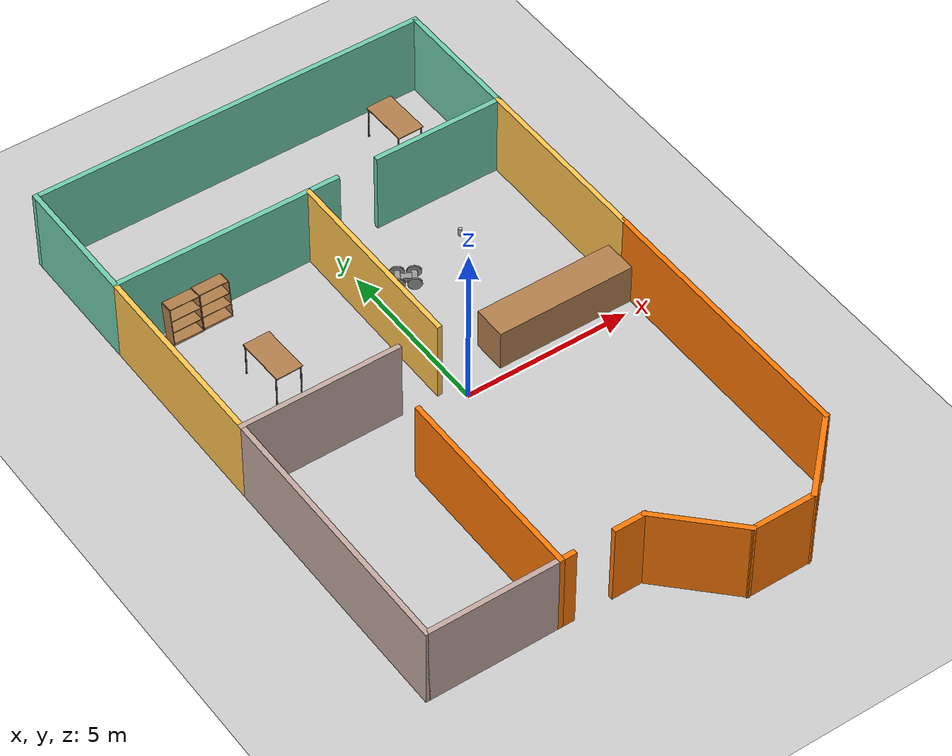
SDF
<sdf version="1.7">
 <world name="default">
  <model name="ground_plane">
   <static>1</static>
   <link name="link">
    <collision name="collision">
     <geometry><plane><normal>0 0 1</normal><size>100 100</size></plane></geometry>
     <surface>
      <contact><collide_bitmask>65535</collide_bitmask></contact>
      <friction><ode><mu>100</mu><mu2>50</mu2></ode></friction>
     </surface>
    </collision>
    <visual name="visual">
     <cast_shadows>0</cast_shadows>
     <geometry><plane><normal>0 0 1</normal><size>100 100</size></plane></geometry>
     <material>
      <script><uri>file://media/materials/scripts/gazebo.material</uri><name>Gazebo/Grey</name></script>
     </material>
    </visual>
   </link>
  </model>
  <model name="Model">
   <pose>-0.460298 0.47343 0 0 -0 0</pose>
   <link name="Wall_0">
    <collision name="Wall_0_Collision">
     <geometry><box><size>12 0.15 2.5</size></box></geometry>
     <pose>0 0 1.25 0 -0 0</pose>
    </collision>
    <visual name="Wall_0_Visual">
     <pose>0 0 1.25 0 -0 0</pose>
     <geometry><box><size>12 0.15 2.5</size></box></geometry>
     <material>
      <script><uri>file://media/materials/scripts/gazebo.material</uri><name>Gazebo/Grey</name></script>
      <ambient>0.435294 0.796078 0.67451 1</ambient>
     </material>
     <meta><layer>0</layer></meta>
    </visual>
    <pose>-0.015533 9.70977 0 0 -0 0</pose>
   </link>
   <link name="Wall_11">
    <collision name="Wall_11_Collision">
     <geometry><box><size>4 0.15 2.5</size></box></geometry>
     <pose>0 0 1.25 0 -0 0</pose>
    </collision>
    <visual name="Wall_11_Visual">
     <pose>0 0 1.25 0 -0 0</pose>
     <geometry><box><size>4 0.15 2.5</size></box></geometry>
     <material>
      <script><uri>file://media/materials/scripts/gazebo.material</uri><name>Gazebo/Grey</name></script>
      <ambient>0.435294 0.796078 0.67451 1</ambient>
     </material>
     <meta><layer>0</layer></meta>
    </visual>
    <pose>5.90947 7.78477 0 0 -0 -1.5708</pose>
   </link>
   <link name="Wall_12">
    <collision name="Wall_12_Collision">
     <geometry><box><size>4 0.15 2.5</size></box></geometry>
     <pose>0 0 1.25 0 -0 0</pose>
    </collision>
    <visual name="Wall_12_Visual">
     <pose>0 0 1.25 0 -0 0</pose>
     <geometry><box><size>4 0.15 2.5</size></box></geometry>
     <material>
      <script><uri>file://media/materials/scripts/gazebo.material</uri><name>Gazebo/Grey</name></script>
      <ambient>0.435294 0.796078 0.67451 1</ambient>
     </material>
     <meta><layer>0</layer></meta>
    </visual>
    <pose>3.98447 5.85977 0 0 -0 3.14159</pose>
   </link>
   <link name="Wall_14">
    <collision name="Wall_14_Collision">
     <geometry><box><size>5.65274 0.15 2.5</size></box></geometry>
     <pose>0 0 1.25 0 -0 0</pose>
    </collision>
    <visual name="Wall_14_Visual">
     <pose>0 0 1.25 0 -0 0</pose>
     <geometry><box><size>5.65274 0.15 2.5</size></box></geometry>
     <material>
      <script><uri>file://media/materials/scripts/gazebo.material</uri><name>Gazebo/Grey</name></script>
      <ambient>1 0.764706 0.305882 1</ambient>
     </material>
     <meta><layer>0</layer></meta>
    </visual>
    <pose>5.90938 3.10857 0 0 -0 -1.57083</pose>
   </link>
   <link name="Wall_17">
    <collision name="Wall_17_Collision">
     <geometry><box><size>8 0.15 2.5</size></box></geometry>
     <pose>0 0 1.25 0 -0 0</pose>
    </collision>
    <visual name="Wall_17_Visual">
     <pose>0 0 1.25 0 -0 0</pose>
     <geometry><box><size>8 0.15 2.5</size></box></geometry>
     <material>
      <script><uri>file://media/materials/scripts/gazebo.material</uri><name>Gazebo/Grey</name></script>
      <ambient>0.760784 0.662745 0.627451 1</ambient>
     </material>
     <meta><layer>0</layer></meta>
    </visual>
    <pose>-5.94053 -3.91523 0 0 -0 -1.5708</pose>
   </link>
   <link name="Wall_18">
    <collision name="Wall_18_Collision">
     <geometry><box><size>4 0.15 2.5</size></box></geometry>
     <pose>0 0 1.25 0 -0 0</pose>
    </collision>
    <visual name="Wall_18_Visual">
     <pose>0 0 1.25 0 -0 0</pose>
     <geometry><box><size>4 0.15 2.5</size></box></geometry>
     <material>
      <script><uri>file://media/materials/scripts/gazebo.material</uri><name>Gazebo/Grey</name></script>
      <ambient>0.760784 0.662745 0.627451 1</ambient>
     </material>
     <meta><layer>0</layer></meta>
    </visual>
    <pose>-4.01553 -7.84023 0 0 -0 0</pose>
   </link>
   <link name="Wall_19">
    <collision name="Wall_19_Collision">
     <geometry><box><size>6 0.15 2.5</size></box></geometry>
     <pose>0 0 1.25 0 -0 0</pose>
    </collision>
    <visual name="Wall_19_Visual">
     <pose>0 0 1.25 0 -0 0</pose>
     <geometry><box><size>6 0.15 2.5</size></box></geometry>
     <material>
      <script><uri>file://media/materials/scripts/gazebo.material</uri><name>Gazebo/Grey</name></script>
      <ambient>0.996078 0.47451 0.0196078 1</ambient>
     </material>
     <meta><layer>0</layer></meta>
    </visual>
    <pose>-2.09053 -4.91523 0 0 -0 1.5708</pose>
   </link>
   <link name="Wall_2">
    <collision name="Wall_2_Collision">
     <geometry><box><size>4 0.15 2.5</size></box></geometry>
     <pose>0 0 1.25 0 -0 0</pose>
    </collision>
    <visual name="Wall_2_Visual">
     <pose>0 0 1.25 0 -0 0</pose>
     <geometry><box><size>4 0.15 2.5</size></box></geometry>
     <material>
      <script><uri>file://media/materials/scripts/gazebo.material</uri><name>Gazebo/Grey</name></script>
      <ambient>0.435294 0.796078 0.67451 1</ambient>
     </material>
     <meta><layer>0</layer></meta>
    </visual>
    <pose>-5.94053 7.78477 0 0 -0 -1.5708</pose>
   </link>
   <link name="Wall_22">
    <collision name="Wall_22_Collision">
     <geometry><box><size>8.34781 0.15 2.5</size></box></geometry>
     <pose>0 0 1.25 0 -0 0</pose>
    </collision>
    <visual name="Wall_22_Visual">
     <pose>0 0 1.25 0 -0 0</pose>
     <geometry><box><size>8.34781 0.15 2.5</size></box></geometry>
     <material>
      <script><uri>file://media/materials/scripts/gazebo.material</uri><name>Gazebo/Grey</name></script>
      <ambient>0.996078 0.47451 0.0196078 1</ambient>
     </material>
     <meta><layer>0</layer></meta>
    </visual>
    <pose>5.90938 -3.74143 0 0 -0 -1.57078</pose>
   </link>
   <link name="Wall_23">
    <collision name="Wall_23_Collision">
     <geometry><box><size>2.75 0.15 2.5</size></box></geometry>
     <pose>0 0 1.25 0 -0 0</pose>
    </collision>
    <visual name="Wall_23_Visual">
     <pose>0 0 1.25 0 -0 0</pose>
     <geometry><box><size>2.75 0.15 2.5</size></box></geometry>
     <material>
      <script><uri>file://media/materials/scripts/gazebo.material</uri><name>Gazebo/Grey</name></script>
      <ambient>0.996078 0.47451 0.0196078 1</ambient>
     </material>
     <meta><layer>0</layer></meta>
    </visual>
    <pose>4.99023 -8.75947 0 0 -0 -2.35619</pose>
   </link>
   <link name="Wall_24">
    <collision name="Wall_24_Collision">
     <geometry><box><size>2 0.15 2.5</size></box></geometry>
     <pose>0 0 1.25 0 -0 0</pose>
    </collision>
    <visual name="Wall_24_Visual">
     <pose>0 0 1.25 0 -0 0</pose>
     <geometry><box><size>2 0.15 2.5</size></box></geometry>
     <material>
      <script><uri>file://media/materials/scripts/gazebo.material</uri><name>Gazebo/Grey</name></script>
      <ambient>0.996078 0.47451 0.0196078 1</ambient>
     </material>
     <meta><layer>0</layer></meta>
    </visual>
    <pose>3.14599 -9.67871 0 0 -0 3.14159</pose>
   </link>
   <link name="Wall_25">
    <collision name="Wall_25_Collision">
     <geometry><box><size>2.75 0.15 2.5</size></box></geometry>
     <pose>0 0 1.25 0 -0 0</pose>
    </collision>
    <visual name="Wall_25_Visual">
     <pose>0 0 1.25 0 -0 0</pose>
     <geometry><box><size>2.75 0.15 2.5</size></box></geometry>
     <material>
      <script><uri>file://media/materials/scripts/gazebo.material</uri><name>Gazebo/Grey</name></script>
      <ambient>0.996078 0.47451 0.0196078 1</ambient>
     </material>
     <meta><layer>0</layer></meta>
    </visual>
    <pose>1.30175 -8.75947 0 0 -0 2.35619</pose>
   </link>
   <link name="Wall_26">
    <collision name="Wall_26_Collision">
     <geometry><box><size>1 0.15 2.5</size></box></geometry>
     <pose>0 0 1.25 0 -0 0</pose>
    </collision>
    <visual name="Wall_26_Visual">
     <pose>0 0 1.25 0 -0 0</pose>
     <geometry><box><size>1 0.15 2.5</size></box></geometry>
     <material>
      <script><uri>file://media/materials/scripts/gazebo.material</uri><name>Gazebo/Grey</name></script>
      <ambient>0.996078 0.47451 0.0196078 1</ambient>
     </material>
     <meta><layer>0</layer></meta>
    </visual>
    <pose>-0.042488 -7.84023 0 0 -0 3.14159</pose>
   </link>
   <link name="Wall_28">
    <collision name="Wall_28_Collision">
     <geometry><box><size>0.5 0.15 2.5</size></box></geometry>
     <pose>0 0 1.25 0 -0 0</pose>
    </collision>
    <visual name="Wall_28_Visual">
     <pose>0 0 1.25 0 -0 0</pose>
     <geometry><box><size>0.5 0.15 2.5</size></box></geometry>
     <material>
      <script><uri>file://media/materials/scripts/gazebo.material</uri><name>Gazebo/Grey</name></script>
      <ambient>0.996078 0.47451 0.0196078 1</ambient>
     </material>
     <meta><layer>0</layer></meta>
    </visual>
    <pose>-1.91553 -7.84023 0 0 -0 0</pose>
   </link>
   <link name="Wall_3">
    <collision name="Wall_3_Collision">
     <geometry><box><size>6 0.15 2.5</size></box></geometry>
     <pose>0 0 1.25 0 -0 0</pose>
    </collision>
    <visual name="Wall_3_Visual">
     <pose>0 0 1.25 0 -0 0</pose>
     <geometry><box><size>6 0.15 2.5</size></box></geometry>
     <material>
      <script><uri>file://media/materials/scripts/gazebo.material</uri><name>Gazebo/Grey</name></script>
      <ambient>0.435294 0.796078 0.67451 1</ambient>
     </material>
     <meta><layer>0</layer></meta>
    </visual>
    <pose>-3.01553 5.85977 0 0 -0 0</pose>
   </link>
   <link name="Wall_31">
    <collision name="Wall_31_Collision">
     <geometry><box><size>4.25 1 1.25</size></box></geometry>
     <pose>0 0 0.625 0 -0 0</pose>
    </collision>
    <visual name="Wall_31_Visual">
     <pose>0 0 0.625 0 -0 0</pose>
     <geometry><box><size>4.25 1 1.25</size></box></geometry>
     <material>
      <script><uri>file://media/materials/scripts/gazebo.material</uri><name>Gazebo/Wood</name></script>
      <ambient>1 1 1 1</ambient>
     </material>
     <meta><layer>0</layer></meta>
    </visual>
    <pose>3.8083 0.326538 0 0 -0 0</pose>
   </link>
   <link name="Wall_4">
    <collision name="Wall_4_Collision">
     <geometry><box><size>5.9849 0.15 2.5</size></box></geometry>
     <pose>0 0 1.25 0 -0 0</pose>
    </collision>
    <visual name="Wall_4_Visual">
     <pose>0 0 1.25 0 -0 0</pose>
     <geometry><box><size>5.9849 0.15 2.5</size></box></geometry>
     <material>
      <script><uri>file://media/materials/scripts/gazebo.material</uri><name>Gazebo/Grey</name></script>
      <ambient>1 0.764706 0.305882 1</ambient>
     </material>
     <meta><layer>0</layer></meta>
    </visual>
    <pose>-0.098094 2.94233 0 0 -0 -1.57339</pose>
   </link>
   <link name="Wall_6">
    <collision name="Wall_6_Collision">
     <geometry><box><size>6 0.15 2.5</size></box></geometry>
     <pose>0 0 1.25 0 -0 0</pose>
    </collision>
    <visual name="Wall_6_Visual">
     <pose>0 0 1.25 0 -0 0</pose>
     <geometry><box><size>6 0.15 2.5</size></box></geometry>
     <material>
      <script><uri>file://media/materials/scripts/gazebo.material</uri><name>Gazebo/Grey</name></script>
      <ambient>1 0.764706 0.305882 1</ambient>
     </material>
     <meta><layer>0</layer></meta>
    </visual>
    <pose>-5.94053 2.93477 0 0 -0 -1.5708</pose>
   </link>
   <link name="Wall_7">
    <collision name="Wall_7_Collision">
     <geometry><box><size>4.75 0.15 2.5</size></box></geometry>
     <pose>0 0 1.25 0 -0 0</pose>
    </collision>
    <visual name="Wall_7_Visual">
     <pose>0 0 1.25 0 -0 0</pose>
     <geometry><box><size>4.75 0.15 2.5</size></box></geometry>
     <material>
      <script><uri>file://media/materials/scripts/gazebo.material</uri><name>Gazebo/Grey</name></script>
      <ambient>0.760784 0.662745 0.627451 1</ambient>
     </material>
     <meta><layer>0</layer></meta>
    </visual>
    <pose>-3.64053 0.009772 0 0 -0 0</pose>
   </link>
   <link name="Wall_9">
    <collision name="Wall_9_Collision">
     <geometry><box><size>1 0.15 2.5</size></box></geometry>
     <pose>0 0 1.25 0 -0 0</pose>
    </collision>
    <visual name="Wall_9_Visual">
     <pose>0 0 1.25 0 -0 0</pose>
     <geometry><box><size>1 0.15 2.5</size></box></geometry>
     <material>
      <script><uri>file://media/materials/scripts/gazebo.material</uri><name>Gazebo/Grey</name></script>
      <ambient>0.435294 0.796078 0.67451 1</ambient>
     </material>
     <meta><layer>0</layer></meta>
    </visual>
    <pose>0.334467 5.85977 0 0 -0 0</pose>
   </link>
   <static>1</static>
  </model>
  <model name="bookshelf">
   <static>1</static>
   <link name="link">
    <inertial><mass>1</mass></inertial>
    <collision name="back">
     <pose>0 0.005 0.6 0 -0 0</pose>
     <geometry><box><size>0.9 0.01 1.2</size></box></geometry>
    </collision>
    <visual name="visual1">
     <pose>0 0.005 0.6 0 -0 0</pose>
     <geometry><box><size>0.9 0.01 1.2</size></box></geometry>
     <material>
      <script><uri>file://media/materials/scripts/gazebo.material</uri><name>Gazebo/Wood</name></script>
     </material>
    </visual>
    <collision name="left_side">
     <pose>0.45 -0.195 0.6 0 -0 0</pose>
     <geometry><box><size>0.02 0.4 1.2</size></box></geometry>
    </collision>
    <visual name="visual2">
     <pose>0.45 -0.195 0.6 0 -0 0</pose>
     <geometry><box><size>0.02 0.4 1.2</size></box></geometry>
     <material>
      <script><uri>file://media/materials/scripts/gazebo.material</uri><name>Gazebo/Wood</name></script>
     </material>
    </visual>
    <collision name="right_side">
     <pose>-0.45 -0.195 0.6 0 -0 0</pose>
     <geometry><box><size>0.02 0.4 1.2</size></box></geometry>
    </collision>
    <visual name="visual3">
     <pose>-0.45 -0.195 0.6 0 -0 0</pose>
     <geometry><box><size>0.02 0.4 1.2</size></box></geometry>
     <material>
      <script><uri>file://media/materials/scripts/gazebo.material</uri><name>Gazebo/Wood</name></script>
     </material>
    </visual>
    <collision name="bottom">
     <pose>0 -0.195 0.03 0 -0 0</pose>
     <geometry><box><size>0.88 0.4 0.06</size></box></geometry>
    </collision>
    <visual name="visual4">
     <pose>0 -0.195 0.03 0 -0 0</pose>
     <geometry><box><size>0.88 0.4 0.06</size></box></geometry>
     <material>
      <script><uri>file://media/materials/scripts/gazebo.material</uri><name>Gazebo/Wood</name></script>
     </material>
    </visual>
    <collision name="top">
     <pose>0 -0.195 1.19 0 -0 0</pose>
     <geometry><box><size>0.88 0.4 0.02</size></box></geometry>
    </collision>
    <visual name="visual5">
     <pose>0 -0.195 1.19 0 -0 0</pose>
     <geometry><box><size>0.88 0.4 0.02</size></box></geometry>
     <material>
      <script><uri>file://media/materials/scripts/gazebo.material</uri><name>Gazebo/Wood</name></script>
     </material>
    </visual>
    <collision name="low_shelf">
     <pose>0 -0.195 0.43 0 -0 0</pose>
     <geometry><box><size>0.88 0.4 0.02</size></box></geometry>
    </collision>
    <visual name="visual6">
     <pose>0 -0.195 0.43 0 -0 0</pose>
     <geometry><box><size>0.88 0.4 0.02</size></box></geometry>
     <material>
      <script><uri>file://media/materials/scripts/gazebo.material</uri><name>Gazebo/Wood</name></script>
     </material>
    </visual>
    <collision name="high_shelf">
     <pose>0 -0.195 0.8 0 -0 0</pose>
     <geometry><box><size>0.88 0.4 0.02</size></box></geometry>
    </collision>
    <visual name="visual7">
     <pose>0 -0.195 0.8 0 -0 0</pose>
     <geometry><box><size>0.88 0.4 0.02</size></box></geometry>
     <material>
      <script><uri>file://media/materials/scripts/gazebo.material</uri><name>Gazebo/Wood</name></script>
     </material>
    </visual>
   </link>
   <pose>-4.71823 6.08584 0 -0.106297 0 0</pose>
  </model>
  <model name="bookshelf_clone">
   <static>1</static>
   <link name="link">
    <inertial><mass>1</mass></inertial>
    <collision name="back">
     <pose>0 0.005 0.6 0 -0 0</pose>
     <geometry><box><size>0.9 0.01 1.2</size></box></geometry>
    </collision>
    <visual name="visual1">
     <pose>0 0.005 0.6 0 -0 0</pose>
     <geometry><box><size>0.9 0.01 1.2</size></box></geometry>
     <material>
      <script><uri>file://media/materials/scripts/gazebo.material</uri><name>Gazebo/Wood</name></script>
     </material>
    </visual>
    <collision name="left_side">
     <pose>0.45 -0.195 0.6 0 -0 0</pose>
     <geometry><box><size>0.02 0.4 1.2</size></box></geometry>
    </collision>
    <visual name="visual2">
     <pose>0.45 -0.195 0.6 0 -0 0</pose>
     <geometry><box><size>0.02 0.4 1.2</size></box></geometry>
     <material>
      <script><uri>file://media/materials/scripts/gazebo.material</uri><name>Gazebo/Wood</name></script>
     </material>
    </visual>
    <collision name="right_side">
     <pose>-0.45 -0.195 0.6 0 -0 0</pose>
     <geometry><box><size>0.02 0.4 1.2</size></box></geometry>
    </collision>
    <visual name="visual3">
     <pose>-0.45 -0.195 0.6 0 -0 0</pose>
     <geometry><box><size>0.02 0.4 1.2</size></box></geometry>
     <material>
      <script><uri>file://media/materials/scripts/gazebo.material</uri><name>Gazebo/Wood</name></script>
     </material>
    </visual>
    <collision name="bottom">
     <pose>0 -0.195 0.03 0 -0 0</pose>
     <geometry><box><size>0.88 0.4 0.06</size></box></geometry>
    </collision>
    <visual name="visual4">
     <pose>0 -0.195 0.03 0 -0 0</pose>
     <geometry><box><size>0.88 0.4 0.06</size></box></geometry>
     <material>
      <script><uri>file://media/materials/scripts/gazebo.material</uri><name>Gazebo/Wood</name></script>
     </material>
    </visual>
    <collision name="top">
     <pose>0 -0.195 1.19 0 -0 0</pose>
     <geometry><box><size>0.88 0.4 0.02</size></box></geometry>
    </collision>
    <visual name="visual5">
     <pose>0 -0.195 1.19 0 -0 0</pose>
     <geometry><box><size>0.88 0.4 0.02</size></box></geometry>
     <material>
      <script><uri>file://media/materials/scripts/gazebo.material</uri><name>Gazebo/Wood</name></script>
     </material>
    </visual>
    <collision name="low_shelf">
     <pose>0 -0.195 0.43 0 -0 0</pose>
     <geometry><box><size>0.88 0.4 0.02</size></box></geometry>
    </collision>
    <visual name="visual6">
     <pose>0 -0.195 0.43 0 -0 0</pose>
     <geometry><box><size>0.88 0.4 0.02</size></box></geometry>
     <material>
      <script><uri>file://media/materials/scripts/gazebo.material</uri><name>Gazebo/Wood</name></script>
     </material>
    </visual>
    <collision name="high_shelf">
     <pose>0 -0.195 0.8 0 -0 0</pose>
     <geometry><box><size>0.88 0.4 0.02</size></box></geometry>
    </collision>
    <visual name="visual7">
     <pose>0 -0.195 0.8 0 -0 0</pose>
     <geometry><box><size>0.88 0.4 0.02</size></box></geometry>
     <material>
      <script><uri>file://media/materials/scripts/gazebo.material</uri><name>Gazebo/Wood</name></script>
     </material>
    </visual>
   </link>
   <pose>-3.82838 6.10928 0 -0.106297 0 0</pose>
  </model>
  <model name="beer">
   <link name="link">
    <pose>0 0 0.115 0 -0 0</pose>
    <inertial>
     <mass>0.39</mass>
     <inertia><ixx>0.00058</ixx><ixy>0</ixy><ixz>0</ixz><iyy>0.00058</iyy><iyz>0</iyz><izz>0.00019</izz></inertia>
    </inertial>
    <collision name="collision">
     <geometry><cylinder><radius>0.055</radius><length>0.23</length></cylinder></geometry>
    </collision>
    <visual name="visual">
     <geometry><cylinder><radius>0.055</radius><length>0.23</length></cylinder></geometry>
     <material>
      <script>
       <uri>model://beer/materials/scripts</uri>
       <uri>model://beer/materials/textures</uri>
       <name>Beer/Diffuse</name>
      </script>
     </material>
    </visual>
   </link>
   <pose>2.71472 4.1849 0.77499 -1e-06 2.6e-05 0.003425</pose>
  </model>
  <model name="JM_robot_0">
   <link name="link_0_clone_0_clone">
    <inertial>
     <mass>1</mass>
     <inertia>
      <ixx>0.166667</ixx>
      <ixy>0</ixy>
      <ixz>0</ixz>
      <iyy>0.166667</iyy>
      <iyz>0</iyz>
      <izz>0.166667</izz>
     </inertia>
    </inertial>
    <visual name="visual">
     <geometry><box><size>0.2 0.3 0.15</size></box></geometry>
     <material>
      <lighting>1</lighting>
      <script><uri>file://media/materials/scripts/gazebo.material</uri><name>Gazebo/Grey</name></script>
      <shader type="pixel"><normal_map>__default__</normal_map></shader>
      <ambient>0.3 0.3 0.3 1</ambient>
      <diffuse>0.7 0.7 0.7 1</diffuse>
      <specular>0.01 0.01 0.01 1</specular>
      <emissive>0 0 0 1</emissive>
     </material>
    </visual>
    <collision name="collision">
     <geometry><box><size>0.2 0.3 0.15</size></box></geometry>
     <surface>
      <friction>
       <ode><mu>1</mu><mu2>1</mu2><fdir1>0 0 0</fdir1><slip1>0</slip1><slip2>0</slip2></ode>
       <torsional>
        <coefficient>1</coefficient>
        <patch_radius>0</patch_radius>
        <surface_radius>0</surface_radius>
        <use_patch_radius>1</use_patch_radius>
        <ode><slip>0</slip></ode>
       </torsional>
      </friction>
      <bounce><restitution_coefficient>0</restitution_coefficient><threshold>1e+06</threshold></bounce>
      <contact>
       <collide_without_contact>0</collide_without_contact>
       <collide_without_contact_bitmask>1</collide_without_contact_bitmask>
       <collide_bitmask>1</collide_bitmask>
       <ode>
        <soft_cfm>0</soft_cfm>
        <soft_erp>0.2</soft_erp>
        <kp>1e+13</kp>
        <kd>1</kd>
        <max_vel>0.01</max_vel>
        <min_depth>0</min_depth>
       </ode>
       <bullet>
        <split_impulse>1</split_impulse>
        <split_impulse_penetration_threshold>-0.01</split_impulse_penetration_threshold>
        <soft_cfm>0</soft_cfm>
        <soft_erp>0.2</soft_erp>
        <kp>1e+13</kp>
        <kd>1</kd>
       </bullet>
      </contact>
     </surface>
    </collision>
   </link>
   <link name="link_1_clone_clone_0_clone">
    <inertial>
     <mass>1</mass>
     <inertia>
      <ixx>0.166667</ixx>
      <ixy>0</ixy>
      <ixz>0</ixz>
      <iyy>0.166667</iyy>
      <iyz>0</iyz>
      <izz>0.166667</izz>
     </inertia>
     <pose>0 0 0.2 0 -0 0</pose>
    </inertial>
    <pose>0 0.225 0 0 -0 0</pose>
    <visual name="visual">
     <geometry><box><size>0.4 0.15 0.15</size></box></geometry>
     <material>
      <lighting>1</lighting>
      <script><uri>file://media/materials/scripts/gazebo.material</uri><name>Gazebo/Grey</name></script>
      <shader type="pixel"><normal_map>__default__</normal_map></shader>
      <ambient>0.3 0.3 0.3 1</ambient>
      <diffuse>0.7 0.7 0.7 1</diffuse>
      <specular>0.01 0.01 0.01 1</specular>
      <emissive>0 0 0 1</emissive>
     </material>
    </visual>
    <collision name="collision">
     <geometry><box><size>0.4 0.15 0.15</size></box></geometry>
     <surface>
      <friction>
       <ode><mu>1</mu><mu2>1</mu2><fdir1>0 0 0</fdir1><slip1>0</slip1><slip2>0</slip2></ode>
       <torsional>
        <coefficient>1</coefficient>
        <patch_radius>0</patch_radius>
        <surface_radius>0</surface_radius>
        <use_patch_radius>1</use_patch_radius>
        <ode><slip>0</slip></ode>
       </torsional>
      </friction>
      <bounce><restitution_coefficient>0</restitution_coefficient><threshold>1e+06</threshold></bounce>
      <contact>
       <collide_without_contact>0</collide_without_contact>
       <collide_without_contact_bitmask>1</collide_without_contact_bitmask>
       <collide_bitmask>1</collide_bitmask>
       <ode>
        <soft_cfm>0</soft_cfm>
        <soft_erp>0.2</soft_erp>
        <kp>1e+13</kp>
        <kd>1</kd>
        <max_vel>0.01</max_vel>
        <min_depth>0</min_depth>
       </ode>
       <bullet>
        <split_impulse>1</split_impulse>
        <split_impulse_penetration_threshold>-0.01</split_impulse_penetration_threshold>
        <soft_cfm>0</soft_cfm>
        <soft_erp>0.2</soft_erp>
        <kp>1e+13</kp>
        <kd>1</kd>
       </bullet>
      </contact>
     </surface>
    </collision>
   </link>
   <link name="link_1_clone_clone_0_clone_clone">
    <inertial>
     <mass>1</mass>
     <inertia>
      <ixx>0.166667</ixx>
      <ixy>0</ixy>
      <ixz>0</ixz>
      <iyy>0.166667</iyy>
      <iyz>0</iyz>
      <izz>0.166667</izz>
     </inertia>
     <pose>0 0 0.2 0 -0 0</pose>
    </inertial>
    <pose>0 -0.225 0 0 -0 0</pose>
    <visual name="visual">
     <geometry><box><size>0.4 0.15 0.15</size></box></geometry>
     <material>
      <lighting>1</lighting>
      <script><uri>file://media/materials/scripts/gazebo.material</uri><name>Gazebo/Grey</name></script>
      <shader type="pixel"><normal_map>__default__</normal_map></shader>
      <ambient>0.3 0.3 0.3 1</ambient>
      <diffuse>0.7 0.7 0.7 1</diffuse>
      <specular>0.01 0.01 0.01 1</specular>
      <emissive>0 0 0 1</emissive>
     </material>
    </visual>
    <collision name="collision">
     <geometry><box><size>0.4 0.15 0.15</size></box></geometry>
     <surface>
      <friction>
       <ode><mu>1</mu><mu2>1</mu2><fdir1>0 0 0</fdir1><slip1>0</slip1><slip2>0</slip2></ode>
       <torsional>
        <coefficient>1</coefficient>
        <patch_radius>0</patch_radius>
        <surface_radius>0</surface_radius>
        <use_patch_radius>1</use_patch_radius>
        <ode><slip>0</slip></ode>
       </torsional>
      </friction>
      <bounce><restitution_coefficient>0</restitution_coefficient><threshold>1e+06</threshold></bounce>
      <contact>
       <collide_without_contact>0</collide_without_contact>
       <collide_without_contact_bitmask>1</collide_without_contact_bitmask>
       <collide_bitmask>1</collide_bitmask>
       <ode>
        <soft_cfm>0</soft_cfm>
        <soft_erp>0.2</soft_erp>
        <kp>1e+13</kp>
        <kd>1</kd>
        <max_vel>0.01</max_vel>
        <min_depth>0</min_depth>
       </ode>
       <bullet>
        <split_impulse>1</split_impulse>
        <split_impulse_penetration_threshold>-0.01</split_impulse_penetration_threshold>
        <soft_cfm>0</soft_cfm>
        <soft_erp>0.2</soft_erp>
        <kp>1e+13</kp>
        <kd>1</kd>
       </bullet>
      </contact>
     </surface>
    </collision>
   </link>
   <link name="link_2_clone">
    <inertial>
     <mass>1</mass>
     <inertia><ixx>0.145833</ixx><ixy>0</ixy><ixz>0</ixz><iyy>0.145833</iyy><iyz>0</iyz><izz>0.125</izz></inertia>
    </inertial>
    <pose>-0.225039 -0.225 0 1.5707 0 1.5707</pose>
    <visual name="visual">
     <geometry><cylinder><radius>0.2</radius><length>0.05</length></cylinder></geometry>
     <material>
      <lighting>1</lighting>
      <script><uri>file://media/materials/scripts/gazebo.material</uri><name>Gazebo/Grey</name></script>
      <shader type="pixel"><normal_map>__default__</normal_map></shader>
      <ambient>0.3 0.3 0.3 1</ambient>
      <diffuse>0.7 0.7 0.7 1</diffuse>
      <specular>0.01 0.01 0.01 1</specular>
      <emissive>0 0 0 1</emissive>
     </material>
    </visual>
    <collision name="collision">
     <geometry><cylinder><radius>0.2</radius><length>0.05</length></cylinder></geometry>
     <surface>
      <friction>
       <ode><mu>1</mu><mu2>1</mu2><fdir1>0 0 0</fdir1><slip1>0</slip1><slip2>0</slip2></ode>
       <torsional>
        <coefficient>1</coefficient>
        <patch_radius>0</patch_radius>
        <surface_radius>0</surface_radius>
        <use_patch_radius>1</use_patch_radius>
        <ode><slip>0</slip></ode>
       </torsional>
      </friction>
      <bounce><restitution_coefficient>0</restitution_coefficient><threshold>1e+06</threshold></bounce>
      <contact>
       <collide_without_contact>0</collide_without_contact>
       <collide_without_contact_bitmask>1</collide_without_contact_bitmask>
       <collide_bitmask>1</collide_bitmask>
       <ode>
        <soft_cfm>0</soft_cfm>
        <soft_erp>0.2</soft_erp>
        <kp>1e+13</kp>
        <kd>1</kd>
        <max_vel>0.01</max_vel>
        <min_depth>0</min_depth>
       </ode>
       <bullet>
        <split_impulse>1</split_impulse>
        <split_impulse_penetration_threshold>-0.01</split_impulse_penetration_threshold>
        <soft_cfm>0</soft_cfm>
        <soft_erp>0.2</soft_erp>
        <kp>1e+13</kp>
        <kd>1</kd>
       </bullet>
      </contact>
     </surface>
    </collision>
   </link>
   <link name="link_2_clone_clone">
    <inertial>
     <mass>1</mass>
     <inertia><ixx>0.145833</ixx><ixy>0</ixy><ixz>0</ixz><iyy>0.145833</iyy><iyz>0</iyz><izz>0.125</izz></inertia>
    </inertial>
    <pose>0.225039 -0.225 0 1.5707 0 1.5707</pose>
    <visual name="visual">
     <geometry><cylinder><radius>0.2</radius><length>0.05</length></cylinder></geometry>
     <material>
      <lighting>1</lighting>
      <script><uri>file://media/materials/scripts/gazebo.material</uri><name>Gazebo/Grey</name></script>
      <shader type="pixel"><normal_map>__default__</normal_map></shader>
      <ambient>0.3 0.3 0.3 1</ambient>
      <diffuse>0.7 0.7 0.7 1</diffuse>
      <specular>0.01 0.01 0.01 1</specular>
      <emissive>0 0 0 1</emissive>
     </material>
    </visual>
    <collision name="collision">
     <geometry><cylinder><radius>0.2</radius><length>0.05</length></cylinder></geometry>
     <surface>
      <friction>
       <ode><mu>1</mu><mu2>1</mu2><fdir1>0 0 0</fdir1><slip1>0</slip1><slip2>0</slip2></ode>
       <torsional>
        <coefficient>1</coefficient>
        <patch_radius>0</patch_radius>
        <surface_radius>0</surface_radius>
        <use_patch_radius>1</use_patch_radius>
        <ode><slip>0</slip></ode>
       </torsional>
      </friction>
      <bounce><restitution_coefficient>0</restitution_coefficient><threshold>1e+06</threshold></bounce>
      <contact>
       <collide_without_contact>0</collide_without_contact>
       <collide_without_contact_bitmask>1</collide_without_contact_bitmask>
       <collide_bitmask>1</collide_bitmask>
       <ode>
        <soft_cfm>0</soft_cfm>
        <soft_erp>0.2</soft_erp>
        <kp>1e+13</kp>
        <kd>1</kd>
        <max_vel>0.01</max_vel>
        <min_depth>0</min_depth>
       </ode>
       <bullet>
        <split_impulse>1</split_impulse>
        <split_impulse_penetration_threshold>-0.01</split_impulse_penetration_threshold>
        <soft_cfm>0</soft_cfm>
        <soft_erp>0.2</soft_erp>
        <kp>1e+13</kp>
        <kd>1</kd>
       </bullet>
      </contact>
     </surface>
    </collision>
   </link>
   <link name="link_2_clone_clone_2">
    <inertial>
     <mass>1</mass>
     <inertia><ixx>0.145833</ixx><ixy>0</ixy><ixz>0</ixz><iyy>0.145833</iyy><iyz>0</iyz><izz>0.125</izz></inertia>
    </inertial>
    <pose>-0.225039 0.225 0 1.5707 0 1.5707</pose>
    <visual name="visual">
     <geometry><cylinder><radius>0.2</radius><length>0.05</length></cylinder></geometry>
     <material>
      <lighting>1</lighting>
      <script><uri>file://media/materials/scripts/gazebo.material</uri><name>Gazebo/Grey</name></script>
      <shader type="pixel"><normal_map>__default__</normal_map></shader>
      <ambient>0.3 0.3 0.3 1</ambient>
      <diffuse>0.7 0.7 0.7 1</diffuse>
      <specular>0.01 0.01 0.01 1</specular>
      <emissive>0 0 0 1</emissive>
     </material>
    </visual>
    <collision name="collision">
     <geometry><cylinder><radius>0.2</radius><length>0.05</length></cylinder></geometry>
     <surface>
      <friction>
       <ode><mu>1</mu><mu2>1</mu2><fdir1>0 0 0</fdir1><slip1>0</slip1><slip2>0</slip2></ode>
       <torsional>
        <coefficient>1</coefficient>
        <patch_radius>0</patch_radius>
        <surface_radius>0</surface_radius>
        <use_patch_radius>1</use_patch_radius>
        <ode><slip>0</slip></ode>
       </torsional>
      </friction>
      <bounce><restitution_coefficient>0</restitution_coefficient><threshold>1e+06</threshold></bounce>
      <contact>
       <collide_without_contact>0</collide_without_contact>
       <collide_without_contact_bitmask>1</collide_without_contact_bitmask>
       <collide_bitmask>1</collide_bitmask>
       <ode>
        <soft_cfm>0</soft_cfm>
        <soft_erp>0.2</soft_erp>
        <kp>1e+13</kp>
        <kd>1</kd>
        <max_vel>0.01</max_vel>
        <min_depth>0</min_depth>
       </ode>
       <bullet>
        <split_impulse>1</split_impulse>
        <split_impulse_penetration_threshold>-0.01</split_impulse_penetration_threshold>
        <soft_cfm>0</soft_cfm>
        <soft_erp>0.2</soft_erp>
        <kp>1e+13</kp>
        <kd>1</kd>
       </bullet>
      </contact>
     </surface>
    </collision>
   </link>
   <link name="link_2_clone_clone_clone">
    <inertial>
     <mass>1</mass>
     <inertia><ixx>0.145833</ixx><ixy>0</ixy><ixz>0</ixz><iyy>0.145833</iyy><iyz>0</iyz><izz>0.125</izz></inertia>
    </inertial>
    <pose>0.225039 0.225 0 1.5707 0 1.5707</pose>
    <visual name="visual">
     <geometry><cylinder><radius>0.2</radius><length>0.05</length></cylinder></geometry>
     <material>
      <lighting>1</lighting>
      <script><uri>file://media/materials/scripts/gazebo.material</uri><name>Gazebo/Grey</name></script>
      <shader type="pixel"><normal_map>__default__</normal_map></shader>
      <ambient>0.3 0.3 0.3 1</ambient>
      <diffuse>0.7 0.7 0.7 1</diffuse>
      <specular>0.01 0.01 0.01 1</specular>
      <emissive>0 0 0 1</emissive>
     </material>
    </visual>
    <collision name="collision">
     <geometry><cylinder><radius>0.2</radius><length>0.05</length></cylinder></geometry>
     <surface>
      <friction>
       <ode><mu>1</mu><mu2>1</mu2><fdir1>0 0 0</fdir1><slip1>0</slip1><slip2>0</slip2></ode>
       <torsional>
        <coefficient>1</coefficient>
        <patch_radius>0</patch_radius>
        <surface_radius>0</surface_radius>
        <use_patch_radius>1</use_patch_radius>
        <ode><slip>0</slip></ode>
       </torsional>
      </friction>
      <bounce><restitution_coefficient>0</restitution_coefficient><threshold>1e+06</threshold></bounce>
      <contact>
       <collide_without_contact>0</collide_without_contact>
       <collide_without_contact_bitmask>1</collide_without_contact_bitmask>
       <collide_bitmask>1</collide_bitmask>
       <ode>
        <soft_cfm>0</soft_cfm>
        <soft_erp>0.2</soft_erp>
        <kp>1e+13</kp>
        <kd>1</kd>
        <max_vel>0.01</max_vel>
        <min_depth>0</min_depth>
       </ode>
       <bullet>
        <split_impulse>1</split_impulse>
        <split_impulse_penetration_threshold>-0.01</split_impulse_penetration_threshold>
        <soft_cfm>0</soft_cfm>
        <soft_erp>0.2</soft_erp>
        <kp>1e+13</kp>
        <kd>1</kd>
       </bullet>
      </contact>
     </surface>
    </collision>
   </link>
   <joint name="link_0_clone_0_clone_JOINT_3" type="fixed">
    <parent>link_0_clone_0_clone</parent>
    <child>link_1_clone_clone_0_clone_clone</child>
    <physics>
     <ode><limit><cfm>0</cfm><erp>0.2</erp></limit><suspension><cfm>0</cfm><erp>0.2</erp></suspension></ode>
    </physics>
   </joint>
   <joint name="link_0_clone_0_clone_JOINT_4" type="fixed">
    <parent>link_0_clone_0_clone</parent>
    <child>link_1_clone_clone_0_clone</child>
    <physics>
     <ode><limit><cfm>0</cfm><erp>0.2</erp></limit><suspension><cfm>0</cfm><erp>0.2</erp></suspension></ode>
    </physics>
   </joint>
   <joint name="link_1_clone_clone_0_clone_JOINT_7" type="revolute">
    <parent>link_1_clone_clone_0_clone</parent>
    <child>link_2_clone_clone_clone</child>
    <axis>
     <xyz>0 0 1</xyz>
     <limit>
      <lower>-1.79769e+308</lower>
      <upper>1.79769e+308</upper>
      <effort>-1</effort>
      <velocity>-1</velocity>
     </limit>
     <dynamics>
      <spring_reference>0</spring_reference>
      <spring_stiffness>0</spring_stiffness>
      <damping>0</damping>
     </dynamics>
    </axis>
    <physics>
     <ode><limit><cfm>0</cfm><erp>0.2</erp></limit><suspension><cfm>0</cfm><erp>0.2</erp></suspension></ode>
    </physics>
   </joint>
   <joint name="link_1_clone_clone_0_clone_JOINT_8" type="revolute">
    <parent>link_1_clone_clone_0_clone</parent>
    <child>link_2_clone_clone_2</child>
    <axis>
     <xyz>0 0 1</xyz>
     <limit>
      <lower>-1.79769e+308</lower>
      <upper>1.79769e+308</upper>
      <effort>-1</effort>
      <velocity>-1</velocity>
     </limit>
     <dynamics>
      <spring_reference>0</spring_reference>
      <spring_stiffness>0</spring_stiffness>
      <damping>0</damping>
     </dynamics>
    </axis>
    <physics>
     <ode><limit><cfm>0</cfm><erp>0.2</erp></limit><suspension><cfm>0</cfm><erp>0.2</erp></suspension></ode>
    </physics>
   </joint>
   <joint name="link_1_clone_clone_0_clone_clone_JOINT_5" type="revolute">
    <parent>link_1_clone_clone_0_clone_clone</parent>
    <child>link_2_clone</child>
    <axis>
     <xyz>0 0 1</xyz>
     <limit>
      <lower>-1.79769e+308</lower>
      <upper>1.79769e+308</upper>
      <effort>-1</effort>
      <velocity>-1</velocity>
     </limit>
     <dynamics>
      <spring_reference>0</spring_reference>
      <spring_stiffness>0</spring_stiffness>
      <damping>0</damping>
     </dynamics>
    </axis>
    <physics>
     <ode><limit><cfm>0</cfm><erp>0.2</erp></limit><suspension><cfm>0</cfm><erp>0.2</erp></suspension></ode>
    </physics>
   </joint>
   <joint name="link_1_clone_clone_0_clone_clone_JOINT_6" type="revolute">
    <parent>link_1_clone_clone_0_clone_clone</parent>
    <child>link_2_clone_clone</child>
    <axis>
     <xyz>0 0 1</xyz>
     <limit>
      <lower>-1.79769e+308</lower>
      <upper>1.79769e+308</upper>
      <effort>-1</effort>
      <velocity>-1</velocity>
     </limit>
     <dynamics>
      <spring_reference>0</spring_reference>
      <spring_stiffness>0</spring_stiffness>
      <damping>0</damping>
     </dynamics>
    </axis>
    <physics>
     <ode><limit><cfm>0</cfm><erp>0.2</erp></limit><suspension><cfm>0</cfm><erp>0.2</erp></suspension></ode>
    </physics>
   </joint>
   <static>0</static>
   <pose>0.985505 4.17412 0.200002 0 -0 1.02329</pose>
  </model>
  <model name="table">
   <static>1</static>
   <link name="link">
    <collision name="surface">
     <pose>0 0 1 0 -0 0</pose>
     <geometry><box><size>1.5 0.8 0.03</size></box></geometry>
     <surface><friction><ode><mu>0.6</mu><mu2>0.6</mu2></ode></friction></surface>
    </collision>
    <visual name="visual1">
     <pose>0 0 1 0 -0 0</pose>
     <geometry><box><size>1.5 0.8 0.03</size></box></geometry>
     <material>
      <script><uri>file://media/materials/scripts/gazebo.material</uri><name>Gazebo/Wood</name></script>
     </material>
    </visual>
    <collision name="front_left_leg">
     <pose>0.68 0.38 0.5 0 -0 0</pose>
     <geometry><cylinder><radius>0.02</radius><length>1</length></cylinder></geometry>
    </collision>
    <visual name="front_left_leg">
     <pose>0.68 0.38 0.5 0 -0 0</pose>
     <geometry><cylinder><radius>0.02</radius><length>1</length></cylinder></geometry>
     <material>
      <script><uri>file://media/materials/scripts/gazebo.material</uri><name>Gazebo/Grey</name></script>
     </material>
    </visual>
    <collision name="front_right_leg">
     <pose>0.68 -0.38 0.5 0 -0 0</pose>
     <geometry><cylinder><radius>0.02</radius><length>1</length></cylinder></geometry>
    </collision>
    <visual name="front_right_leg">
     <pose>0.68 -0.38 0.5 0 -0 0</pose>
     <geometry><cylinder><radius>0.02</radius><length>1</length></cylinder></geometry>
     <material>
      <script><uri>file://media/materials/scripts/gazebo.material</uri><name>Gazebo/Grey</name></script>
     </material>
    </visual>
    <collision name="back_right_leg">
     <pose>-0.68 -0.38 0.5 0 -0 0</pose>
     <geometry><cylinder><radius>0.02</radius><length>1</length></cylinder></geometry>
    </collision>
    <visual name="back_right_leg">
     <pose>-0.68 -0.38 0.5 0 -0 0</pose>
     <geometry><cylinder><radius>0.02</radius><length>1</length></cylinder></geometry>
     <material>
      <script><uri>file://media/materials/scripts/gazebo.material</uri><name>Gazebo/Grey</name></script>
     </material>
    </visual>
    <collision name="back_left_leg">
     <pose>-0.68 0.38 0.5 0 -0 0</pose>
     <geometry><cylinder><radius>0.02</radius><length>1</length></cylinder></geometry>
    </collision>
    <visual name="back_left_leg">
     <pose>-0.68 0.38 0.5 0 -0 0</pose>
     <geometry><cylinder><radius>0.02</radius><length>1</length></cylinder></geometry>
     <material>
      <script><uri>file://media/materials/scripts/gazebo.material</uri><name>Gazebo/Grey</name></script>
     </material>
    </visual>
   </link>
   <pose>-3.76548 3.19789 0 0 -0 1.59658</pose>
  </model>
  <model name="table_0">
   <static>1</static>
   <link name="link">
    <collision name="surface">
     <pose>0 0 1 0 -0 0</pose>
     <geometry><box><size>1.5 0.8 0.03</size></box></geometry>
     <surface><friction><ode><mu>0.6</mu><mu2>0.6</mu2></ode></friction></surface>
    </collision>
    <visual name="visual1">
     <pose>0 0 1 0 -0 0</pose>
     <geometry><box><size>1.5 0.8 0.03</size></box></geometry>
     <material>
      <script><uri>file://media/materials/scripts/gazebo.material</uri><name>Gazebo/Wood</name></script>
     </material>
    </visual>
    <collision name="front_left_leg">
     <pose>0.68 0.38 0.5 0 -0 0</pose>
     <geometry><cylinder><radius>0.02</radius><length>1</length></cylinder></geometry>
    </collision>
    <visual name="front_left_leg">
     <pose>0.68 0.38 0.5 0 -0 0</pose>
     <geometry><cylinder><radius>0.02</radius><length>1</length></cylinder></geometry>
     <material>
      <script><uri>file://media/materials/scripts/gazebo.material</uri><name>Gazebo/Grey</name></script>
     </material>
    </visual>
    <collision name="front_right_leg">
     <pose>0.68 -0.38 0.5 0 -0 0</pose>
     <geometry><cylinder><radius>0.02</radius><length>1</length></cylinder></geometry>
    </collision>
    <visual name="front_right_leg">
     <pose>0.68 -0.38 0.5 0 -0 0</pose>
     <geometry><cylinder><radius>0.02</radius><length>1</length></cylinder></geometry>
     <material>
      <script><uri>file://media/materials/scripts/gazebo.material</uri><name>Gazebo/Grey</name></script>
     </material>
    </visual>
    <collision name="back_right_leg">
     <pose>-0.68 -0.38 0.5 0 -0 0</pose>
     <geometry><cylinder><radius>0.02</radius><length>1</length></cylinder></geometry>
    </collision>
    <visual name="back_right_leg">
     <pose>-0.68 -0.38 0.5 0 -0 0</pose>
     <geometry><cylinder><radius>0.02</radius><length>1</length></cylinder></geometry>
     <material>
      <script><uri>file://media/materials/scripts/gazebo.material</uri><name>Gazebo/Grey</name></script>
     </material>
    </visual>
    <collision name="back_left_leg">
     <pose>-0.68 0.38 0.5 0 -0 0</pose>
     <geometry><cylinder><radius>0.02</radius><length>1</length></cylinder></geometry>
    </collision>
    <visual name="back_left_leg">
     <pose>-0.68 0.38 0.5 0 -0 0</pose>
     <geometry><cylinder><radius>0.02</radius><length>1</length></cylinder></geometry>
     <material>
      <script><uri>file://media/materials/scripts/gazebo.material</uri><name>Gazebo/Grey</name></script>
     </material>
    </visual>
   </link>
   <pose>3.70775 8.62749 0 0 -0 1.59276</pose>
  </model>
 </world>
</sdf>
